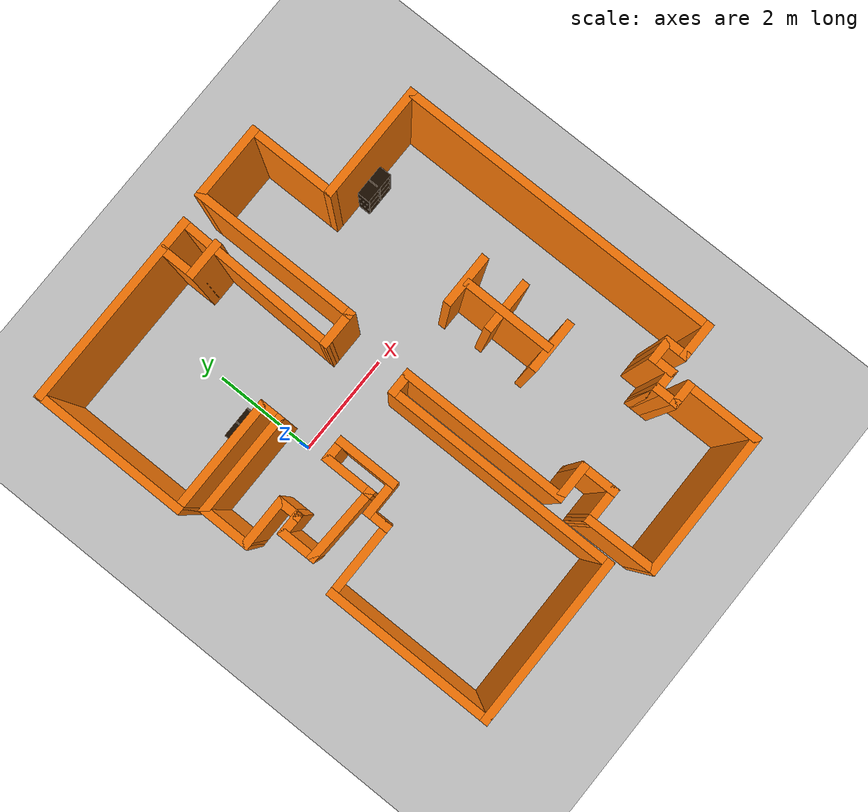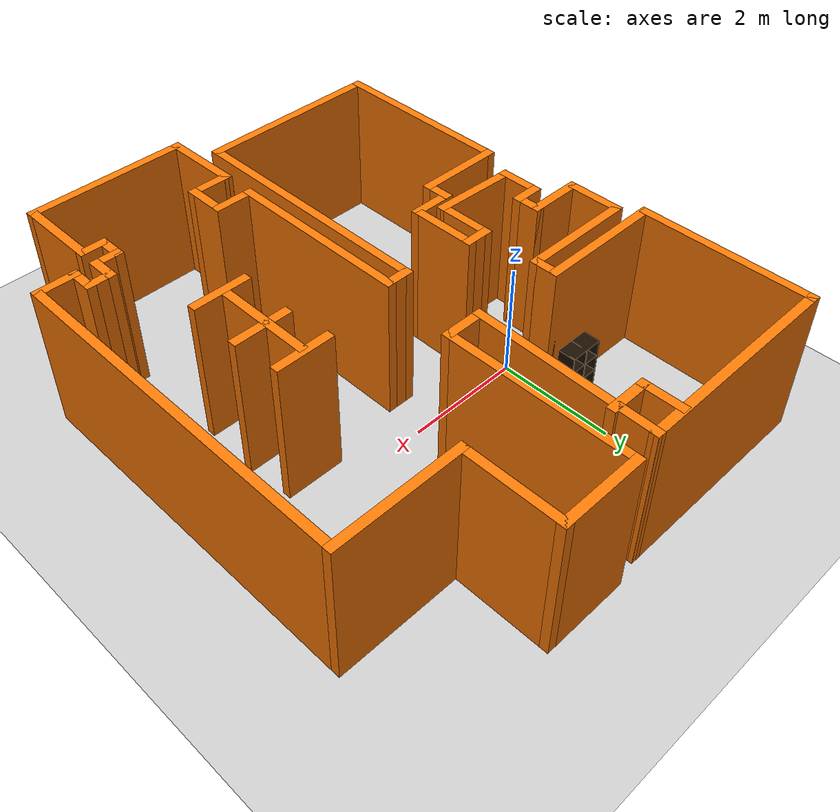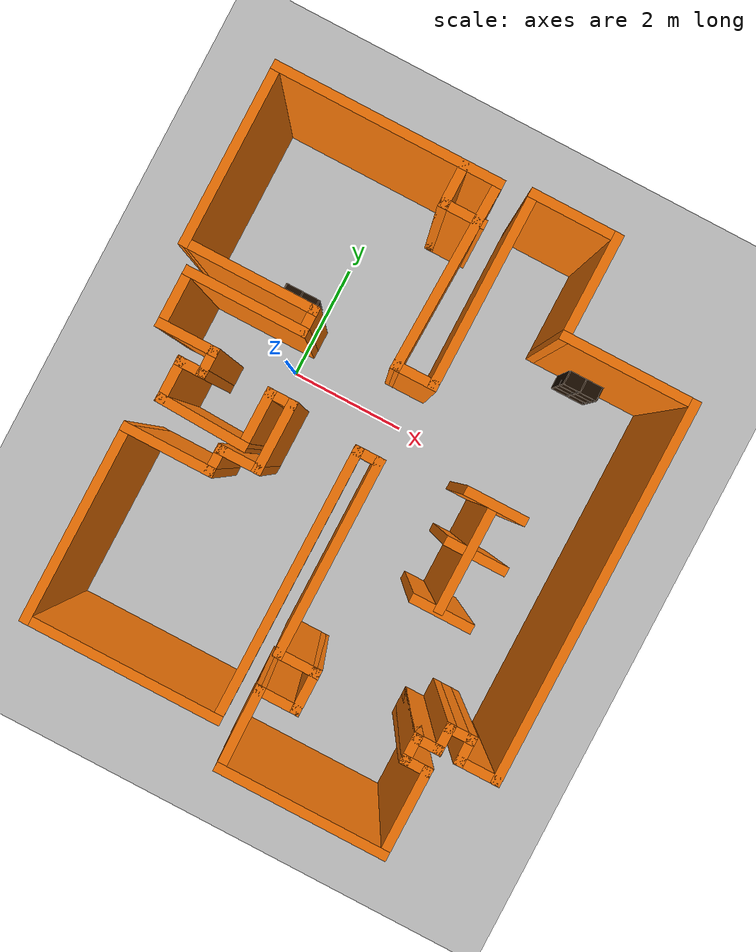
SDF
<sdf version="1.6">
 <world name="default">
  <light name="sun" type="directional">
   <pose>0 0 10 0 -0 0</pose>
   <diffuse>0.8 0.8 0.8 1</diffuse>
   <specular>0.2 0.2 0.2 1</specular>
   <attenuation>
    <range>1000</range>
    <constant>0.9</constant>
    <linear>0.01</linear>
    <quadratic>0.001</quadratic>
   </attenuation>
   <direction>-0.5 0.1 -0.9</direction>
  </light>
  <model name="ground_plane">
   <static>1</static>
   <link name="link">
    <collision name="collision">
     <geometry><plane><normal>0 0 1</normal><size>100 100</size></plane></geometry>
     <surface>
      <contact><collide_bitmask>65535</collide_bitmask></contact>
      <friction><ode><mu>100</mu><mu2>50</mu2></ode></friction>
     </surface>
    </collision>
    <visual name="visual">
     <cast_shadows>0</cast_shadows>
     <geometry><plane><normal>0 0 1</normal><size>100 100</size></plane></geometry>
     <material>
      <script><uri>file://media/materials/scripts/gazebo.material</uri><name>Gazebo/Grey</name></script>
     </material>
    </visual>
   </link>
  </model>
  <gravity>0 0 -9.8</gravity>
  <magnetic_field>6e-06 2.3e-05 -4.2e-05</magnetic_field>
  <atmosphere type="adiabatic"/>
  <physics name="default_physics" default="0" type="ode">
   <max_step_size>0.001</max_step_size>
   <real_time_factor>1</real_time_factor>
   <real_time_update_rate>1000</real_time_update_rate>
  </physics>
  <scene><ambient>0.4 0.4 0.4 1</ambient><background>0.7 0.7 0.7 1</background><shadows>1</shadows></scene>
  <audio><device>default</device></audio>
  <spherical_coordinates>
   <surface_model>EARTH_WGS84</surface_model>
   <latitude_deg>0</latitude_deg>
   <longitude_deg>0</longitude_deg>
   <elevation>0</elevation>
   <heading_deg>0</heading_deg>
  </spherical_coordinates>
  <model name="map_81">
   <pose>1.76322 -0.950902 0 0 -0 0</pose>
   <link name="Wall_0">
    <collision name="Wall_0_Collision">
     <geometry><box><size>3.75 0.15 2.5</size></box></geometry>
     <pose>0 0 1.25 0 -0 0</pose>
    </collision>
    <visual name="Wall_0_Visual">
     <pose>0 0 1.25 0 -0 0</pose>
     <geometry><box><size>3.75 0.15 2.5</size></box></geometry>
     <material>
      <script><uri>file://media/materials/scripts/gazebo.material</uri><name>Gazebo/Grey</name></script>
      <ambient>0.996078 0.47451 0.0196078 1</ambient>
     </material>
     <meta><layer>0</layer></meta>
    </visual>
    <pose>-1.98682 4.6059 0 0 -0 3.14159</pose>
   </link>
   <link name="Wall_1">
    <collision name="Wall_1_Collision">
     <geometry><box><size>3 0.15 2.5</size></box></geometry>
     <pose>0 0 1.25 0 -0 0</pose>
    </collision>
    <visual name="Wall_1_Visual">
     <pose>0 0 1.25 0 -0 0</pose>
     <geometry><box><size>3 0.15 2.5</size></box></geometry>
     <material>
      <script><uri>file://media/materials/scripts/gazebo.material</uri><name>Gazebo/Grey</name></script>
      <ambient>0.996078 0.47451 0.0196078 1</ambient>
     </material>
     <meta><layer>0</layer></meta>
    </visual>
    <pose>-3.78682 3.1809 0 0 -0 -1.5708</pose>
   </link>
   <link name="Wall_10">
    <collision name="Wall_10_Collision">
     <geometry><box><size>1 0.15 2.5</size></box></geometry>
     <pose>0 0 1.25 0 -0 0</pose>
    </collision>
    <visual name="Wall_10_Visual">
     <pose>0 0 1.25 0 -0 0</pose>
     <geometry><box><size>1 0.15 2.5</size></box></geometry>
     <material>
      <script><uri>file://media/materials/scripts/gazebo.material</uri><name>Gazebo/Grey</name></script>
      <ambient>0.996078 0.47451 0.0196078 1</ambient>
     </material>
     <meta><layer>0</layer></meta>
    </visual>
    <pose>-3.11182 0.555897 0 0 -0 0</pose>
   </link>
   <link name="Wall_11">
    <collision name="Wall_11_Collision">
     <geometry><box><size>0.5 0.15 2.5</size></box></geometry>
     <pose>0 0 1.25 0 -0 0</pose>
    </collision>
    <visual name="Wall_11_Visual">
     <pose>0 0 1.25 0 -0 0</pose>
     <geometry><box><size>0.5 0.15 2.5</size></box></geometry>
     <material>
      <script><uri>file://media/materials/scripts/gazebo.material</uri><name>Gazebo/Grey</name></script>
      <ambient>0.996078 0.47451 0.0196078 1</ambient>
     </material>
     <meta><layer>0</layer></meta>
    </visual>
    <pose>-2.68682 0.380897 0 0 -0 -1.5708</pose>
   </link>
   <link name="Wall_12">
    <collision name="Wall_12_Collision">
     <geometry><box><size>0.5 0.15 2.5</size></box></geometry>
     <pose>0 0 1.25 0 -0 0</pose>
    </collision>
    <visual name="Wall_12_Visual">
     <pose>0 0 1.25 0 -0 0</pose>
     <geometry><box><size>0.5 0.15 2.5</size></box></geometry>
     <material>
      <script><uri>file://media/materials/scripts/gazebo.material</uri><name>Gazebo/Grey</name></script>
      <ambient>0.996078 0.47451 0.0196078 1</ambient>
     </material>
     <meta><layer>0</layer></meta>
    </visual>
    <pose>-2.86182 0.205897 0 0 -0 3.14159</pose>
   </link>
   <link name="Wall_13">
    <collision name="Wall_13_Collision">
     <geometry><box><size>0.75 0.15 2.5</size></box></geometry>
     <pose>0 0 1.25 0 -0 0</pose>
    </collision>
    <visual name="Wall_13_Visual">
     <pose>0 0 1.25 0 -0 0</pose>
     <geometry><box><size>0.75 0.15 2.5</size></box></geometry>
     <material>
      <script><uri>file://media/materials/scripts/gazebo.material</uri><name>Gazebo/Grey</name></script>
      <ambient>0.996078 0.47451 0.0196078 1</ambient>
     </material>
     <meta><layer>0</layer></meta>
    </visual>
    <pose>-3.03682 -0.094103 0 0 -0 -1.5708</pose>
   </link>
   <link name="Wall_14">
    <collision name="Wall_14_Collision">
     <geometry><box><size>1.50105 0.15 2.5</size></box></geometry>
     <pose>0 0 1.25 0 -0 0</pose>
    </collision>
    <visual name="Wall_14_Visual">
     <pose>0 0 1.25 0 -0 0</pose>
     <geometry><box><size>1.50105 0.15 2.5</size></box></geometry>
     <material>
      <script><uri>file://media/materials/scripts/gazebo.material</uri><name>Gazebo/Grey</name></script>
      <ambient>0.996078 0.47451 0.0196078 1</ambient>
     </material>
     <meta><layer>0</layer></meta>
    </visual>
    <pose>-2.36182 -0.420703 0 0 -0 -0.039387</pose>
   </link>
   <link name="Wall_18">
    <collision name="Wall_18_Collision">
     <geometry><box><size>0.75 0.15 2.5</size></box></geometry>
     <pose>0 0 1.25 0 -0 0</pose>
    </collision>
    <visual name="Wall_18_Visual">
     <pose>0 0 1.25 0 -0 0</pose>
     <geometry><box><size>0.75 0.15 2.5</size></box></geometry>
     <material>
      <script><uri>file://media/materials/scripts/gazebo.material</uri><name>Gazebo/Grey</name></script>
      <ambient>0.996078 0.47451 0.0196078 1</ambient>
     </material>
     <meta><layer>0</layer></meta>
    </visual>
    <pose>-1.63682 -0.644103 0 0 -0 3.14159</pose>
   </link>
   <link name="Wall_19">
    <collision name="Wall_19_Collision">
     <geometry><box><size>0.5 0.15 2.5</size></box></geometry>
     <pose>0 0 1.25 0 -0 0</pose>
    </collision>
    <visual name="Wall_19_Visual">
     <pose>0 0 1.25 0 -0 0</pose>
     <geometry><box><size>0.5 0.15 2.5</size></box></geometry>
     <material>
      <script><uri>file://media/materials/scripts/gazebo.material</uri><name>Gazebo/Grey</name></script>
      <ambient>0.996078 0.47451 0.0196078 1</ambient>
     </material>
     <meta><layer>0</layer></meta>
    </visual>
    <pose>-1.93682 -0.819103 0 0 -0 -1.5708</pose>
   </link>
   <link name="Wall_2">
    <collision name="Wall_2_Collision">
     <geometry><box><size>2.25 0.15 2.5</size></box></geometry>
     <pose>0 0 1.25 0 -0 0</pose>
    </collision>
    <visual name="Wall_2_Visual">
     <pose>0 0 1.25 0 -0 0</pose>
     <geometry><box><size>2.25 0.15 2.5</size></box></geometry>
     <material>
      <script><uri>file://media/materials/scripts/gazebo.material</uri><name>Gazebo/Grey</name></script>
      <ambient>0.996078 0.47451 0.0196078 1</ambient>
     </material>
     <meta><layer>0</layer></meta>
    </visual>
    <pose>-2.73682 1.7559 0 0 -0 0</pose>
   </link>
   <link name="Wall_20">
    <collision name="Wall_20_Collision">
     <geometry><box><size>1.5 0.15 2.5</size></box></geometry>
     <pose>0 0 1.25 0 -0 0</pose>
    </collision>
    <visual name="Wall_20_Visual">
     <pose>0 0 1.25 0 -0 0</pose>
     <geometry><box><size>1.5 0.15 2.5</size></box></geometry>
     <material>
      <script><uri>file://media/materials/scripts/gazebo.material</uri><name>Gazebo/Grey</name></script>
      <ambient>0.996078 0.47451 0.0196078 1</ambient>
     </material>
     <meta><layer>0</layer></meta>
    </visual>
    <pose>-2.61182 -0.994103 0 0 -0 3.14159</pose>
   </link>
   <link name="Wall_21">
    <collision name="Wall_21_Collision">
     <geometry><box><size>3.25 0.15 2.5</size></box></geometry>
     <pose>0 0 1.25 0 -0 0</pose>
    </collision>
    <visual name="Wall_21_Visual">
     <pose>0 0 1.25 0 -0 0</pose>
     <geometry><box><size>3.25 0.15 2.5</size></box></geometry>
     <material>
      <script><uri>file://media/materials/scripts/gazebo.material</uri><name>Gazebo/Grey</name></script>
      <ambient>0.996078 0.47451 0.0196078 1</ambient>
     </material>
     <meta><layer>0</layer></meta>
    </visual>
    <pose>-3.28682 -2.5441 0 0 -0 -1.5708</pose>
   </link>
   <link name="Wall_22">
    <collision name="Wall_22_Collision">
     <geometry><box><size>3.25 0.15 2.5</size></box></geometry>
     <pose>0 0 1.25 0 -0 0</pose>
    </collision>
    <visual name="Wall_22_Visual">
     <pose>0 0 1.25 0 -0 0</pose>
     <geometry><box><size>3.25 0.15 2.5</size></box></geometry>
     <material>
      <script><uri>file://media/materials/scripts/gazebo.material</uri><name>Gazebo/Grey</name></script>
      <ambient>0.996078 0.47451 0.0196078 1</ambient>
     </material>
     <meta><layer>0</layer></meta>
    </visual>
    <pose>-1.73682 -4.0941 0 0 -0 0</pose>
   </link>
   <link name="Wall_23">
    <collision name="Wall_23_Collision">
     <geometry><box><size>4.5 0.15 2.5</size></box></geometry>
     <pose>0 0 1.25 0 -0 0</pose>
    </collision>
    <visual name="Wall_23_Visual">
     <pose>0 0 1.25 0 -0 0</pose>
     <geometry><box><size>4.5 0.15 2.5</size></box></geometry>
     <material>
      <script><uri>file://media/materials/scripts/gazebo.material</uri><name>Gazebo/Grey</name></script>
      <ambient>0.996078 0.47451 0.0196078 1</ambient>
     </material>
     <meta><layer>0</layer></meta>
    </visual>
    <pose>-0.186823 -1.9191 0 0 -0 1.5708</pose>
   </link>
   <link name="Wall_25">
    <collision name="Wall_25_Collision">
     <geometry><box><size>0.5 0.15 2.5</size></box></geometry>
     <pose>0 0 1.25 0 -0 0</pose>
    </collision>
    <visual name="Wall_25_Visual">
     <pose>0 0 1.25 0 -0 0</pose>
     <geometry><box><size>0.5 0.15 2.5</size></box></geometry>
     <material>
      <script><uri>file://media/materials/scripts/gazebo.material</uri><name>Gazebo/Grey</name></script>
      <ambient>0.996078 0.47451 0.0196078 1</ambient>
     </material>
     <meta><layer>0</layer></meta>
    </visual>
    <pose>-0.011823 0.255897 0 0 -0 0</pose>
   </link>
   <link name="Wall_26">
    <collision name="Wall_26_Collision">
     <geometry><box><size>3.25 0.15 2.5</size></box></geometry>
     <pose>0 0 1.25 0 -0 0</pose>
    </collision>
    <visual name="Wall_26_Visual">
     <pose>0 0 1.25 0 -0 0</pose>
     <geometry><box><size>3.25 0.15 2.5</size></box></geometry>
     <material>
      <script><uri>file://media/materials/scripts/gazebo.material</uri><name>Gazebo/Grey</name></script>
      <ambient>0.996078 0.47451 0.0196078 1</ambient>
     </material>
     <meta><layer>0</layer></meta>
    </visual>
    <pose>0.163177 -1.2941 0 0 -0 -1.5708</pose>
   </link>
   <link name="Wall_27">
    <collision name="Wall_27_Collision">
     <geometry><box><size>0.75 0.15 2.5</size></box></geometry>
     <pose>0 0 1.25 0 -0 0</pose>
    </collision>
    <visual name="Wall_27_Visual">
     <pose>0 0 1.25 0 -0 0</pose>
     <geometry><box><size>0.75 0.15 2.5</size></box></geometry>
     <material>
      <script><uri>file://media/materials/scripts/gazebo.material</uri><name>Gazebo/Grey</name></script>
      <ambient>0.996078 0.47451 0.0196078 1</ambient>
     </material>
     <meta><layer>0</layer></meta>
    </visual>
    <pose>0.463177 -2.8441 0 0 -0 0</pose>
   </link>
   <link name="Wall_28">
    <collision name="Wall_28_Collision">
     <geometry><box><size>0.75 0.15 2.5</size></box></geometry>
     <pose>0 0 1.25 0 -0 0</pose>
    </collision>
    <visual name="Wall_28_Visual">
     <pose>0 0 1.25 0 -0 0</pose>
     <geometry><box><size>0.75 0.15 2.5</size></box></geometry>
     <material>
      <script><uri>file://media/materials/scripts/gazebo.material</uri><name>Gazebo/Grey</name></script>
      <ambient>0.996078 0.47451 0.0196078 1</ambient>
     </material>
     <meta><layer>0</layer></meta>
    </visual>
    <pose>0.763177 -3.1441 0 0 -0 -1.5708</pose>
   </link>
   <link name="Wall_3">
    <collision name="Wall_3_Collision">
     <geometry><box><size>0.5 0.15 2.5</size></box></geometry>
     <pose>0 0 1.25 0 -0 0</pose>
    </collision>
    <visual name="Wall_3_Visual">
     <pose>0 0 1.25 0 -0 0</pose>
     <geometry><box><size>0.5 0.15 2.5</size></box></geometry>
     <material>
      <script><uri>file://media/materials/scripts/gazebo.material</uri><name>Gazebo/Grey</name></script>
      <ambient>0.996078 0.47451 0.0196078 1</ambient>
     </material>
     <meta><layer>0</layer></meta>
    </visual>
    <pose>-1.68682 1.5809 0 0 -0 -1.5708</pose>
   </link>
   <link name="Wall_33">
    <collision name="Wall_33_Collision">
     <geometry><box><size>2.80373 0.15 2.5</size></box></geometry>
     <pose>0 0 1.25 0 -0 0</pose>
    </collision>
    <visual name="Wall_33_Visual">
     <pose>0 0 1.25 0 -0 0</pose>
     <geometry><box><size>2.80373 0.15 2.5</size></box></geometry>
     <material>
      <script><uri>file://media/materials/scripts/gazebo.material</uri><name>Gazebo/Grey</name></script>
      <ambient>0.996078 0.47451 0.0196078 1</ambient>
     </material>
     <meta><layer>0</layer></meta>
    </visual>
    <pose>1.51022 -4.69939 0 0 -0 0</pose>
   </link>
   <link name="Wall_34">
    <collision name="Wall_34_Collision">
     <geometry><box><size>1.5 0.15 2.5</size></box></geometry>
     <pose>0 0 1.25 0 -0 0</pose>
    </collision>
    <visual name="Wall_34_Visual">
     <pose>0 0 1.25 0 -0 0</pose>
     <geometry><box><size>1.5 0.15 2.5</size></box></geometry>
     <material>
      <script><uri>file://media/materials/scripts/gazebo.material</uri><name>Gazebo/Grey</name></script>
      <ambient>0.996078 0.47451 0.0196078 1</ambient>
     </material>
     <meta><layer>0</layer></meta>
    </visual>
    <pose>2.83682 -4.0244 0 0 -0 1.5708</pose>
   </link>
   <link name="Wall_35">
    <collision name="Wall_35_Collision">
     <geometry><box><size>0.5 0.15 2.5</size></box></geometry>
     <pose>0 0 1.25 0 -0 0</pose>
    </collision>
    <visual name="Wall_35_Visual">
     <pose>0 0 1.25 0 -0 0</pose>
     <geometry><box><size>0.5 0.15 2.5</size></box></geometry>
     <material>
      <script><uri>file://media/materials/scripts/gazebo.material</uri><name>Gazebo/Grey</name></script>
      <ambient>0.996078 0.47451 0.0196078 1</ambient>
     </material>
     <meta><layer>0</layer></meta>
    </visual>
    <pose>2.66182 -3.34939 0 0 -0 3.14159</pose>
   </link>
   <link name="Wall_36">
    <collision name="Wall_36_Collision">
     <geometry><box><size>0.5 0.15 2.5</size></box></geometry>
     <pose>0 0 1.25 0 -0 0</pose>
    </collision>
    <visual name="Wall_36_Visual">
     <pose>0 0 1.25 0 -0 0</pose>
     <geometry><box><size>0.5 0.15 2.5</size></box></geometry>
     <material>
      <script><uri>file://media/materials/scripts/gazebo.material</uri><name>Gazebo/Grey</name></script>
      <ambient>0.996078 0.47451 0.0196078 1</ambient>
     </material>
     <meta><layer>0</layer></meta>
    </visual>
    <pose>2.48682 -3.17439 0 0 -0 1.5708</pose>
   </link>
   <link name="Wall_37">
    <collision name="Wall_37_Collision">
     <geometry><box><size>0.5 0.15 2.5</size></box></geometry>
     <pose>0 0 1.25 0 -0 0</pose>
    </collision>
    <visual name="Wall_37_Visual">
     <pose>0 0 1.25 0 -0 0</pose>
     <geometry><box><size>0.5 0.15 2.5</size></box></geometry>
     <material>
      <script><uri>file://media/materials/scripts/gazebo.material</uri><name>Gazebo/Grey</name></script>
      <ambient>0.996078 0.47451 0.0196078 1</ambient>
     </material>
     <meta><layer>0</layer></meta>
    </visual>
    <pose>2.66182 -2.99939 0 0 -0 0</pose>
   </link>
   <link name="Wall_38">
    <collision name="Wall_38_Collision">
     <geometry><box><size>0.5 0.15 2.5</size></box></geometry>
     <pose>0 0 1.25 0 -0 0</pose>
    </collision>
    <visual name="Wall_38_Visual">
     <pose>0 0 1.25 0 -0 0</pose>
     <geometry><box><size>0.5 0.15 2.5</size></box></geometry>
     <material>
      <script><uri>file://media/materials/scripts/gazebo.material</uri><name>Gazebo/Grey</name></script>
      <ambient>0.996078 0.47451 0.0196078 1</ambient>
     </material>
     <meta><layer>0</layer></meta>
    </visual>
    <pose>2.83682 -2.82439 0 0 -0 1.5708</pose>
   </link>
   <link name="Wall_39">
    <collision name="Wall_39_Collision">
     <geometry><box><size>0.5 0.15 2.5</size></box></geometry>
     <pose>0 0 1.25 0 -0 0</pose>
    </collision>
    <visual name="Wall_39_Visual">
     <pose>0 0 1.25 0 -0 0</pose>
     <geometry><box><size>0.5 0.15 2.5</size></box></geometry>
     <material>
      <script><uri>file://media/materials/scripts/gazebo.material</uri><name>Gazebo/Grey</name></script>
      <ambient>0.996078 0.47451 0.0196078 1</ambient>
     </material>
     <meta><layer>0</layer></meta>
    </visual>
    <pose>3.01182 -2.6494 0 0 -0 0</pose>
   </link>
   <link name="Wall_40">
    <collision name="Wall_40_Collision">
     <geometry><box><size>0.5 0.15 2.5</size></box></geometry>
     <pose>0 0 1.25 0 -0 0</pose>
    </collision>
    <visual name="Wall_40_Visual">
     <pose>0 0 1.25 0 -0 0</pose>
     <geometry><box><size>0.5 0.15 2.5</size></box></geometry>
     <material>
      <script><uri>file://media/materials/scripts/gazebo.material</uri><name>Gazebo/Grey</name></script>
      <ambient>0.996078 0.47451 0.0196078 1</ambient>
     </material>
     <meta><layer>0</layer></meta>
    </visual>
    <pose>3.18682 -2.82439 0 0 -0 -1.5708</pose>
   </link>
   <link name="Wall_41">
    <collision name="Wall_41_Collision">
     <geometry><box><size>0.75 0.15 2.5</size></box></geometry>
     <pose>0 0 1.25 0 -0 0</pose>
    </collision>
    <visual name="Wall_41_Visual">
     <pose>0 0 1.25 0 -0 0</pose>
     <geometry><box><size>0.75 0.15 2.5</size></box></geometry>
     <material>
      <script><uri>file://media/materials/scripts/gazebo.material</uri><name>Gazebo/Grey</name></script>
      <ambient>0.996078 0.47451 0.0196078 1</ambient>
     </material>
     <meta><layer>0</layer></meta>
    </visual>
    <pose>3.48682 -2.99939 0 0 -0 0</pose>
   </link>
   <link name="Wall_42">
    <collision name="Wall_42_Collision">
     <geometry><box><size>6.25 0.15 2.5</size></box></geometry>
     <pose>0 0 1.25 0 -0 0</pose>
    </collision>
    <visual name="Wall_42_Visual">
     <pose>0 0 1.25 0 -0 0</pose>
     <geometry><box><size>6.25 0.15 2.5</size></box></geometry>
     <material>
      <script><uri>file://media/materials/scripts/gazebo.material</uri><name>Gazebo/Grey</name></script>
      <ambient>0.996078 0.47451 0.0196078 1</ambient>
     </material>
     <meta><layer>0</layer></meta>
    </visual>
    <pose>3.78682 0.050606 0 0 -0 1.5708</pose>
   </link>
   <link name="Wall_43">
    <collision name="Wall_43_Collision">
     <geometry><box><size>2.25 0.15 2.5</size></box></geometry>
     <pose>0 0 1.25 0 -0 0</pose>
    </collision>
    <visual name="Wall_43_Visual">
     <pose>0 0 1.25 0 -0 0</pose>
     <geometry><box><size>2.25 0.15 2.5</size></box></geometry>
     <material>
      <script><uri>file://media/materials/scripts/gazebo.material</uri><name>Gazebo/Grey</name></script>
      <ambient>0.996078 0.47451 0.0196078 1</ambient>
     </material>
     <meta><layer>0</layer></meta>
    </visual>
    <pose>2.73682 3.10061 0 0 -0 3.14159</pose>
   </link>
   <link name="Wall_44">
    <collision name="Wall_44_Collision">
     <geometry><box><size>1.75 0.15 2.5</size></box></geometry>
     <pose>0 0 1.25 0 -0 0</pose>
    </collision>
    <visual name="Wall_44_Visual">
     <pose>0 0 1.25 0 -0 0</pose>
     <geometry><box><size>1.75 0.15 2.5</size></box></geometry>
     <material>
      <script><uri>file://media/materials/scripts/gazebo.material</uri><name>Gazebo/Grey</name></script>
      <ambient>0.996078 0.47451 0.0196078 1</ambient>
     </material>
     <meta><layer>0</layer></meta>
    </visual>
    <pose>1.68682 3.90061 0 0 -0 1.5708</pose>
   </link>
   <link name="Wall_45">
    <collision name="Wall_45_Collision">
     <geometry><box><size>1.5 0.15 2.5</size></box></geometry>
     <pose>0 0 1.25 0 -0 0</pose>
    </collision>
    <visual name="Wall_45_Visual">
     <pose>0 0 1.25 0 -0 0</pose>
     <geometry><box><size>1.5 0.15 2.5</size></box></geometry>
     <material>
      <script><uri>file://media/materials/scripts/gazebo.material</uri><name>Gazebo/Grey</name></script>
      <ambient>0.996078 0.47451 0.0196078 1</ambient>
     </material>
     <meta><layer>0</layer></meta>
    </visual>
    <pose>1.01182 4.70061 0 0 -0 3.14159</pose>
   </link>
   <link name="Wall_46">
    <collision name="Wall_46_Collision">
     <geometry><box><size>3.25 0.15 2.5</size></box></geometry>
     <pose>0 0 1.25 0 -0 0</pose>
    </collision>
    <visual name="Wall_46_Visual">
     <pose>0 0 1.25 0 -0 0</pose>
     <geometry><box><size>3.25 0.15 2.5</size></box></geometry>
     <material>
      <script><uri>file://media/materials/scripts/gazebo.material</uri><name>Gazebo/Grey</name></script>
      <ambient>0.996078 0.47451 0.0196078 1</ambient>
     </material>
     <meta><layer>0</layer></meta>
    </visual>
    <pose>0.336822 3.15061 0 0 -0 -1.5708</pose>
   </link>
   <link name="Wall_49">
    <collision name="Wall_49_Collision">
     <geometry><box><size>0.75 0.15 2.5</size></box></geometry>
     <pose>0 0 1.25 0 -0 0</pose>
    </collision>
    <visual name="Wall_49_Visual">
     <pose>0 0 1.25 0 -0 0</pose>
     <geometry><box><size>0.75 0.15 2.5</size></box></geometry>
     <material>
      <script><uri>file://media/materials/scripts/gazebo.material</uri><name>Gazebo/Grey</name></script>
      <ambient>0.996078 0.47451 0.0196078 1</ambient>
     </material>
     <meta><layer>0</layer></meta>
    </visual>
    <pose>0.036822 1.60061 0 0 -0 3.14159</pose>
   </link>
   <link name="Wall_50">
    <collision name="Wall_50_Collision">
     <geometry><box><size>3.15626 0.15 2.5</size></box></geometry>
     <pose>0 0 1.25 0 -0 0</pose>
    </collision>
    <visual name="Wall_50_Visual">
     <pose>0 0 1.25 0 -0 0</pose>
     <geometry><box><size>3.15626 0.15 2.5</size></box></geometry>
     <material>
      <script><uri>file://media/materials/scripts/gazebo.material</uri><name>Gazebo/Grey</name></script>
      <ambient>0.996078 0.47451 0.0196078 1</ambient>
     </material>
     <meta><layer>0</layer></meta>
    </visual>
    <pose>-0.225 3.10325 0 0 -0 1.5454</pose>
   </link>
   <link name="Wall_52">
    <collision name="Wall_52_Collision">
     <geometry><box><size>0.75 0.15 2.5</size></box></geometry>
     <pose>0 0 1.25 0 -0 0</pose>
    </collision>
    <visual name="Wall_52_Visual">
     <pose>0 0 1.25 0 -0 0</pose>
     <geometry><box><size>0.75 0.15 2.5</size></box></geometry>
     <material>
      <script><uri>file://media/materials/scripts/gazebo.material</uri><name>Gazebo/Grey</name></script>
      <ambient>0.996078 0.47451 0.0196078 1</ambient>
     </material>
     <meta><layer>0</layer></meta>
    </visual>
    <pose>-0.745427 4.2793 0 0 -0 -1.5708</pose>
   </link>
   <link name="Wall_55">
    <collision name="Wall_55_Collision">
     <geometry><box><size>0.75 0.15 2.5</size></box></geometry>
     <pose>0 0 1.25 0 -0 0</pose>
    </collision>
    <visual name="Wall_55_Visual">
     <pose>0 0 1.25 0 -0 0</pose>
     <geometry><box><size>0.75 0.15 2.5</size></box></geometry>
     <material>
      <script><uri>file://media/materials/scripts/gazebo.material</uri><name>Gazebo/Grey</name></script>
      <ambient>0.996078 0.47451 0.0196078 1</ambient>
     </material>
     <meta><layer>0</layer></meta>
    </visual>
    <pose>-0.445427 3.9793 0 0 -0 0</pose>
   </link>
   <link name="Wall_57">
    <collision name="Wall_57_Collision">
     <geometry><box><size>1 0.15 2.5</size></box></geometry>
     <pose>0 0 1.25 0 -0 0</pose>
    </collision>
    <visual name="Wall_57_Visual">
     <pose>0 0 1.25 0 -0 0</pose>
     <geometry><box><size>1 0.15 2.5</size></box></geometry>
     <material>
      <script><uri>file://media/materials/scripts/gazebo.material</uri><name>Gazebo/Grey</name></script>
      <ambient>0.996078 0.47451 0.0196078 1</ambient>
     </material>
     <meta><layer>0</layer></meta>
    </visual>
    <pose>-1.68682 -0.022303 0 0 -0 1.5708</pose>
   </link>
   <link name="Wall_58">
    <collision name="Wall_58_Collision">
     <geometry><box><size>0.5 0.15 2.5</size></box></geometry>
     <pose>0 0 1.25 0 -0 0</pose>
    </collision>
    <visual name="Wall_58_Visual">
     <pose>0 0 1.25 0 -0 0</pose>
     <geometry><box><size>0.5 0.15 2.5</size></box></geometry>
     <material>
      <script><uri>file://media/materials/scripts/gazebo.material</uri><name>Gazebo/Grey</name></script>
      <ambient>0.996078 0.47451 0.0196078 1</ambient>
     </material>
     <meta><layer>0</layer></meta>
    </visual>
    <pose>-1.51182 0.402696 0 0 -0 0</pose>
   </link>
   <link name="Wall_59">
    <collision name="Wall_59_Collision">
     <geometry><box><size>1.1968 0.15 2.5</size></box></geometry>
     <pose>0 0 1.25 0 -0 0</pose>
    </collision>
    <visual name="Wall_59_Visual">
     <pose>0 0 1.25 0 -0 0</pose>
     <geometry><box><size>1.1968 0.15 2.5</size></box></geometry>
     <material>
      <script><uri>file://media/materials/scripts/gazebo.material</uri><name>Gazebo/Grey</name></script>
      <ambient>0.996078 0.47451 0.0196078 1</ambient>
     </material>
     <meta><layer>0</layer></meta>
    </visual>
    <pose>-1.33682 -0.120703 0 0 -0 -1.5708</pose>
   </link>
   <link name="Wall_8">
    <collision name="Wall_8_Collision">
     <geometry><box><size>2 0.15 2.5</size></box></geometry>
     <pose>0 0 1.25 0 -0 0</pose>
    </collision>
    <visual name="Wall_8_Visual">
     <pose>0 0 1.25 0 -0 0</pose>
     <geometry><box><size>2 0.15 2.5</size></box></geometry>
     <material>
      <script><uri>file://media/materials/scripts/gazebo.material</uri><name>Gazebo/Grey</name></script>
      <ambient>0.996078 0.47451 0.0196078 1</ambient>
     </material>
     <meta><layer>0</layer></meta>
    </visual>
    <pose>-2.61182 1.4059 0 0 -0 3.14159</pose>
   </link>
   <link name="Wall_80">
    <collision name="Wall_80_Collision">
     <geometry><box><size>0.75 0.15 2.5</size></box></geometry>
     <pose>0 0 1.25 0 -0 0</pose>
    </collision>
    <visual name="Wall_80_Visual">
     <pose>0 0 1.25 0 -0 0</pose>
     <geometry><box><size>0.75 0.15 2.5</size></box></geometry>
     <material>
      <script><uri>file://media/materials/scripts/gazebo.material</uri><name>Gazebo/Grey</name></script>
      <ambient>0.996078 0.47451 0.0196078 1</ambient>
     </material>
     <meta><layer>0</layer></meta>
    </visual>
    <pose>0.463177 -3.4441 0 0 -0 3.14159</pose>
   </link>
   <link name="Wall_81">
    <collision name="Wall_81_Collision">
     <geometry><box><size>1.40546 0.15 2.5</size></box></geometry>
     <pose>0 0 1.25 0 -0 0</pose>
    </collision>
    <visual name="Wall_81_Visual">
     <pose>0 0 1.25 0 -0 0</pose>
     <geometry><box><size>1.40546 0.15 2.5</size></box></geometry>
     <material>
      <script><uri>file://media/materials/scripts/gazebo.material</uri><name>Gazebo/Grey</name></script>
      <ambient>0.996078 0.47451 0.0196078 1</ambient>
     </material>
     <meta><layer>0</layer></meta>
    </visual>
    <pose>0.1734 -4.07175 0 0 -0 -1.55451</pose>
   </link>
   <link name="Wall_9">
    <collision name="Wall_9_Collision">
     <geometry><box><size>1 0.15 2.5</size></box></geometry>
     <pose>0 0 1.25 0 -0 0</pose>
    </collision>
    <visual name="Wall_9_Visual">
     <pose>0 0 1.25 0 -0 0</pose>
     <geometry><box><size>1 0.15 2.5</size></box></geometry>
     <material>
      <script><uri>file://media/materials/scripts/gazebo.material</uri><name>Gazebo/Grey</name></script>
      <ambient>0.996078 0.47451 0.0196078 1</ambient>
     </material>
     <meta><layer>0</layer></meta>
    </visual>
    <pose>-3.53682 0.980897 0 0 -0 -1.5708</pose>
   </link>
   <link name="Wall_93">
    <collision name="Wall_93_Collision">
     <geometry><box><size>1 0.15 2.5</size></box></geometry>
     <pose>0 0 1.25 0 -0 0</pose>
    </collision>
    <visual name="Wall_93_Visual">
     <pose>0 0 1.25 0 -0 0</pose>
     <geometry><box><size>1 0.15 2.5</size></box></geometry>
     <material>
      <script><uri>file://media/materials/scripts/gazebo.material</uri><name>Gazebo/Grey</name></script>
      <ambient>0.996078 0.47451 0.0196078 1</ambient>
     </material>
     <meta><layer>0</layer></meta>
    </visual>
    <pose>1.94059 0.482866 0 0 -0 0</pose>
   </link>
   <link name="Wall_95">
    <collision name="Wall_95_Collision">
     <geometry><box><size>1.75 0.15 2.5</size></box></geometry>
     <pose>0 0 1.25 0 -0 0</pose>
    </collision>
    <visual name="Wall_95_Visual">
     <pose>0 0 1.25 0 -0 0</pose>
     <geometry><box><size>1.75 0.15 2.5</size></box></geometry>
     <material>
      <script><uri>file://media/materials/scripts/gazebo.material</uri><name>Gazebo/Grey</name></script>
      <ambient>0.996078 0.47451 0.0196078 1</ambient>
     </material>
     <meta><layer>0</layer></meta>
    </visual>
    <pose>1.91459 -0.396934 0 0 -0 -1.5708</pose>
   </link>
   <link name="Wall_97">
    <collision name="Wall_97_Collision">
     <geometry><box><size>1 0.15 2.5</size></box></geometry>
     <pose>0 0 1.25 0 -0 0</pose>
    </collision>
    <visual name="Wall_97_Visual">
     <pose>0 0 1.25 0 -0 0</pose>
     <geometry><box><size>1 0.15 2.5</size></box></geometry>
     <material>
      <script><uri>file://media/materials/scripts/gazebo.material</uri><name>Gazebo/Grey</name></script>
      <ambient>0.996078 0.47451 0.0196078 1</ambient>
     </material>
     <meta><layer>0</layer></meta>
    </visual>
    <pose>2.02039 -0.28854 0 0 -0 0</pose>
   </link>
   <link name="Wall_99">
    <collision name="Wall_99_Collision">
     <geometry><box><size>1 0.15 2.5</size></box></geometry>
     <pose>0 0 1.25 0 -0 0</pose>
    </collision>
    <visual name="Wall_99_Visual">
     <pose>0 0 1.25 0 -0 0</pose>
     <geometry><box><size>1 0.15 2.5</size></box></geometry>
     <material>
      <script><uri>file://media/materials/scripts/gazebo.material</uri><name>Gazebo/Grey</name></script>
      <ambient>0.996078 0.47451 0.0196078 1</ambient>
     </material>
     <meta><layer>0</layer></meta>
    </visual>
    <pose>1.96719 -1.24615 0 0 -0 0</pose>
   </link>
   <static>1</static>
  </model>
  <model name="6_Cube_StorageE">
   <link name="Wall_0">
    <pose>0 0 0.01 0 -0 0</pose>
    <inertial>
     <mass>1.6201</mass>
     <inertia><ixx>0.0119</ixx><iyy>0.0631</iyy><izz>0.0513</izz><ixy>0</ixy><ixz>0</ixz><iyz>0</iyz></inertia>
    </inertial>
    <collision name="Wall_0_Collision"><geometry><box><size>0.616 0.296 0.02</size></box></geometry></collision>
    <visual name="Wall_0_Visual">
     <geometry><box><size>0.616 0.296 0.02</size></box></geometry>
     <material>
      <script><uri>file://media/materials/scripts/gazebo.material</uri><name>Gazebo/Grey</name></script>
      <ambient>0.105882 0.0509804 0 1</ambient>
     </material>
    </visual>
   </link>
   <joint name="0_2" type="fixed">
    <pose>-0.308 0 0 0 -0 0</pose>
    <parent>Wall_2</parent>
    <child>Wall_0</child>
    <axis>
     <xyz>1 0 0</xyz>
     <use_parent_model_frame>0</use_parent_model_frame>
     <limit><lower>-1e+16</lower><upper>1e+16</upper></limit>
    </axis>
   </joint>
   <joint name="0_12" type="fixed">
    <parent>Wall_12</parent>
    <child>Wall_0</child>
    <axis>
     <xyz>0 0 1</xyz>
     <use_parent_model_frame>0</use_parent_model_frame>
     <limit><lower>-1e+16</lower><upper>1e+16</upper></limit>
    </axis>
   </joint>
   <joint name="0_4" type="fixed">
    <pose>0.308 0 0 0 -0 0</pose>
    <parent>Wall_4</parent>
    <child>Wall_0</child>
    <axis>
     <xyz>1 0 0</xyz>
     <use_parent_model_frame>0</use_parent_model_frame>
     <limit><lower>-1e+16</lower><upper>1e+16</upper></limit>
    </axis>
   </joint>
   <link name="Wall_10">
    <pose>0 0 0.61 0 -0 0</pose>
    <inertial>
     <mass>1.6201</mass>
     <inertia><ixx>0.0119</ixx><iyy>0.0631</iyy><izz>0.0513</izz><ixy>0</ixy><ixz>0</ixz><iyz>0</iyz></inertia>
    </inertial>
    <collision name="Wall_10_Collision"><geometry><box><size>0.616 0.296 0.02</size></box></geometry></collision>
    <visual name="Wall_10_Visual">
     <geometry><box><size>0.616 0.296 0.02</size></box></geometry>
     <material>
      <script><uri>file://media/materials/scripts/gazebo.material</uri><name>Gazebo/Grey</name></script>
      <ambient>0.105882 0.0509804 0 1</ambient>
     </material>
    </visual>
   </link>
   <joint name="10_2" type="fixed">
    <pose>-0.308 0 0 0 -0 0</pose>
    <parent>Wall_2</parent>
    <child>Wall_10</child>
    <axis>
     <xyz>1 0 0</xyz>
     <use_parent_model_frame>0</use_parent_model_frame>
     <limit><lower>-1e+16</lower><upper>1e+16</upper></limit>
    </axis>
   </joint>
   <joint name="10_12" type="fixed">
    <parent>Wall_12</parent>
    <child>Wall_10</child>
    <axis>
     <xyz>0 0 1</xyz>
     <use_parent_model_frame>0</use_parent_model_frame>
     <limit><lower>-1e+16</lower><upper>1e+16</upper></limit>
    </axis>
   </joint>
   <joint name="10_4" type="fixed">
    <pose>0.308 0 0 0 -0 0</pose>
    <parent>Wall_4</parent>
    <child>Wall_10</child>
    <axis>
     <xyz>1 0 0</xyz>
     <use_parent_model_frame>0</use_parent_model_frame>
     <limit><lower>-1e+16</lower><upper>1e+16</upper></limit>
    </axis>
   </joint>
   <link name="Wall_12">
    <pose>0 0 0.4575 0 -0 0</pose>
    <inertial>
     <mass>2.4065</mass>
     <inertia><ixx>0.0177</ixx><iyy>0.1855</iyy><izz>0.168</izz><ixy>0</ixy><ixz>0</ixz><iyz>0</iyz></inertia>
    </inertial>
    <collision name="Wall_12_Collision"><geometry><box><size>0.02 0.296 0.915</size></box></geometry></collision>
    <visual name="Wall_12_Visual">
     <geometry><box><size>0.02 0.296 0.915</size></box></geometry>
     <material>
      <script><uri>file://media/materials/scripts/gazebo.material</uri><name>Gazebo/Grey</name></script>
      <ambient>0.105882 0.0509804 0 1</ambient>
     </material>
    </visual>
   </link>
   <link name="Wall_2">
    <pose>-0.298 0 0.4575 0 -0 0</pose>
    <inertial>
     <mass>2.4065</mass>
     <inertia><ixx>0.0177</ixx><iyy>0.1855</iyy><izz>0.168</izz><ixy>0</ixy><ixz>0</ixz><iyz>0</iyz></inertia>
    </inertial>
    <collision name="Wall_2_Collision"><geometry><box><size>0.02 0.296 0.915</size></box></geometry></collision>
    <visual name="Wall_2_Visual">
     <geometry><box><size>0.02 0.296 0.915</size></box></geometry>
     <material>
      <script><uri>file://media/materials/scripts/gazebo.material</uri><name>Gazebo/Grey</name></script>
      <ambient>0.105882 0.0509804 0 1</ambient>
     </material>
    </visual>
   </link>
   <link name="Wall_4">
    <pose>0.298 0 0.4575 0 -0 0</pose>
    <inertial>
     <mass>2.4065</mass>
     <inertia><ixx>0.0177</ixx><iyy>0.1855</iyy><izz>0.168</izz><ixy>0</ixy><ixz>0</ixz><iyz>0</iyz></inertia>
    </inertial>
    <collision name="Wall_4_Collision"><geometry><box><size>0.02 0.296 0.915</size></box></geometry></collision>
    <visual name="Wall_4_Visual">
     <geometry><box><size>0.02 0.296 0.915</size></box></geometry>
     <material>
      <script><uri>file://media/materials/scripts/gazebo.material</uri><name>Gazebo/Grey</name></script>
      <ambient>0.105882 0.0509804 0 1</ambient>
     </material>
    </visual>
   </link>
   <link name="Wall_6">
    <pose>0 0 0.905 0 -0 0</pose>
    <inertial>
     <mass>1.6201</mass>
     <inertia><ixx>0.0119</ixx><iyy>0.0631</iyy><izz>0.0513</izz><ixy>0</ixy><ixz>0</ixz><iyz>0</iyz></inertia>
    </inertial>
    <collision name="Wall_6_Collision"><geometry><box><size>0.616 0.296 0.02</size></box></geometry></collision>
    <visual name="Wall_6_Visual">
     <geometry><box><size>0.616 0.296 0.02</size></box></geometry>
     <material>
      <script><uri>file://media/materials/scripts/gazebo.material</uri><name>Gazebo/Grey</name></script>
      <ambient>0.105882 0.0509804 0 1</ambient>
     </material>
    </visual>
   </link>
   <joint name="6_2" type="fixed">
    <pose>-0.308 0 0 0 -0 0</pose>
    <parent>Wall_2</parent>
    <child>Wall_6</child>
    <axis>
     <xyz>2 0 0</xyz>
     <use_parent_model_frame>0</use_parent_model_frame>
     <limit><lower>-1e+16</lower><upper>1e+16</upper></limit>
    </axis>
   </joint>
   <joint name="6_12" type="fixed">
    <parent>Wall_12</parent>
    <child>Wall_6</child>
    <axis>
     <xyz>0 0 1</xyz>
     <use_parent_model_frame>0</use_parent_model_frame>
     <limit><lower>-1e+16</lower><upper>1e+16</upper></limit>
    </axis>
   </joint>
   <joint name="6_4" type="fixed">
    <pose>0.308 0 0 0 -0 0</pose>
    <parent>Wall_4</parent>
    <child>Wall_6</child>
    <axis>
     <xyz>1 0 0</xyz>
     <use_parent_model_frame>0</use_parent_model_frame>
     <limit><lower>-1e+16</lower><upper>1e+16</upper></limit>
    </axis>
   </joint>
   <link name="Wall_8">
    <pose>0 0 0.305 0 -0 0</pose>
    <inertial>
     <mass>1.6201</mass>
     <inertia><ixx>0.0119</ixx><iyy>0.0631</iyy><izz>0.0513</izz><ixy>0</ixy><ixz>0</ixz><iyz>0</iyz></inertia>
    </inertial>
    <collision name="Wall_8_Collision"><geometry><box><size>0.616 0.296 0.02</size></box></geometry></collision>
    <visual name="Wall_8_Visual">
     <geometry><box><size>0.616 0.296 0.02</size></box></geometry>
     <material>
      <script><uri>file://media/materials/scripts/gazebo.material</uri><name>Gazebo/Grey</name></script>
      <ambient>0.105882 0.0509804 0 1</ambient>
     </material>
    </visual>
   </link>
   <joint name="8_2" type="fixed">
    <pose>-0.308 0 0 0 -0 0</pose>
    <parent>Wall_2</parent>
    <child>Wall_8</child>
    <axis>
     <xyz>1 0 0</xyz>
     <use_parent_model_frame>0</use_parent_model_frame>
     <limit><lower>-1e+16</lower><upper>1e+16</upper></limit>
    </axis>
   </joint>
   <joint name="8_12" type="fixed">
    <parent>Wall_12</parent>
    <child>Wall_8</child>
    <axis>
     <xyz>0 0 1</xyz>
     <use_parent_model_frame>0</use_parent_model_frame>
     <limit><lower>-1e+16</lower><upper>1e+16</upper></limit>
    </axis>
   </joint>
   <joint name="8_4" type="fixed">
    <pose>0.308 0 0 0 -0 0</pose>
    <parent>Wall_4</parent>
    <child>Wall_8</child>
    <axis>
     <xyz>1 0 0</xyz>
     <use_parent_model_frame>0</use_parent_model_frame>
     <limit><lower>-1e+16</lower><upper>1e+16</upper></limit>
    </axis>
   </joint>
   <static>1</static>
   <pose>-0.41764 1.04055 0 0 -0 0</pose>
  </model>
  <model name="6_Cube_StorageE_0">
   <link name="Wall_0">
    <pose>0 0 0.01 0 -0 0</pose>
    <inertial>
     <mass>1.6201</mass>
     <inertia><ixx>0.0119</ixx><iyy>0.0631</iyy><izz>0.0513</izz><ixy>0</ixy><ixz>0</ixz><iyz>0</iyz></inertia>
    </inertial>
    <collision name="Wall_0_Collision"><geometry><box><size>0.616 0.296 0.02</size></box></geometry></collision>
    <visual name="Wall_0_Visual">
     <geometry><box><size>0.616 0.296 0.02</size></box></geometry>
     <material>
      <script><uri>file://media/materials/scripts/gazebo.material</uri><name>Gazebo/Grey</name></script>
      <ambient>0.105882 0.0509804 0 1</ambient>
     </material>
    </visual>
   </link>
   <joint name="0_2" type="fixed">
    <pose>-0.308 0 0 0 -0 0</pose>
    <parent>Wall_2</parent>
    <child>Wall_0</child>
    <axis>
     <xyz>1 0 0</xyz>
     <use_parent_model_frame>0</use_parent_model_frame>
     <limit><lower>-1e+16</lower><upper>1e+16</upper></limit>
    </axis>
   </joint>
   <joint name="0_12" type="fixed">
    <parent>Wall_12</parent>
    <child>Wall_0</child>
    <axis>
     <xyz>0 0 1</xyz>
     <use_parent_model_frame>0</use_parent_model_frame>
     <limit><lower>-1e+16</lower><upper>1e+16</upper></limit>
    </axis>
   </joint>
   <joint name="0_4" type="fixed">
    <pose>0.308 0 0 0 -0 0</pose>
    <parent>Wall_4</parent>
    <child>Wall_0</child>
    <axis>
     <xyz>1 0 0</xyz>
     <use_parent_model_frame>0</use_parent_model_frame>
     <limit><lower>-1e+16</lower><upper>1e+16</upper></limit>
    </axis>
   </joint>
   <link name="Wall_10">
    <pose>0 0 0.61 0 -0 0</pose>
    <inertial>
     <mass>1.6201</mass>
     <inertia><ixx>0.0119</ixx><iyy>0.0631</iyy><izz>0.0513</izz><ixy>0</ixy><ixz>0</ixz><iyz>0</iyz></inertia>
    </inertial>
    <collision name="Wall_10_Collision"><geometry><box><size>0.616 0.296 0.02</size></box></geometry></collision>
    <visual name="Wall_10_Visual">
     <geometry><box><size>0.616 0.296 0.02</size></box></geometry>
     <material>
      <script><uri>file://media/materials/scripts/gazebo.material</uri><name>Gazebo/Grey</name></script>
      <ambient>0.105882 0.0509804 0 1</ambient>
     </material>
    </visual>
   </link>
   <joint name="10_2" type="fixed">
    <pose>-0.308 0 0 0 -0 0</pose>
    <parent>Wall_2</parent>
    <child>Wall_10</child>
    <axis>
     <xyz>1 0 0</xyz>
     <use_parent_model_frame>0</use_parent_model_frame>
     <limit><lower>-1e+16</lower><upper>1e+16</upper></limit>
    </axis>
   </joint>
   <joint name="10_12" type="fixed">
    <parent>Wall_12</parent>
    <child>Wall_10</child>
    <axis>
     <xyz>0 0 1</xyz>
     <use_parent_model_frame>0</use_parent_model_frame>
     <limit><lower>-1e+16</lower><upper>1e+16</upper></limit>
    </axis>
   </joint>
   <joint name="10_4" type="fixed">
    <pose>0.308 0 0 0 -0 0</pose>
    <parent>Wall_4</parent>
    <child>Wall_10</child>
    <axis>
     <xyz>1 0 0</xyz>
     <use_parent_model_frame>0</use_parent_model_frame>
     <limit><lower>-1e+16</lower><upper>1e+16</upper></limit>
    </axis>
   </joint>
   <link name="Wall_12">
    <pose>0 0 0.4575 0 -0 0</pose>
    <inertial>
     <mass>2.4065</mass>
     <inertia><ixx>0.0177</ixx><iyy>0.1855</iyy><izz>0.168</izz><ixy>0</ixy><ixz>0</ixz><iyz>0</iyz></inertia>
    </inertial>
    <collision name="Wall_12_Collision"><geometry><box><size>0.02 0.296 0.915</size></box></geometry></collision>
    <visual name="Wall_12_Visual">
     <geometry><box><size>0.02 0.296 0.915</size></box></geometry>
     <material>
      <script><uri>file://media/materials/scripts/gazebo.material</uri><name>Gazebo/Grey</name></script>
      <ambient>0.105882 0.0509804 0 1</ambient>
     </material>
    </visual>
   </link>
   <link name="Wall_2">
    <pose>-0.298 0 0.4575 0 -0 0</pose>
    <inertial>
     <mass>2.4065</mass>
     <inertia><ixx>0.0177</ixx><iyy>0.1855</iyy><izz>0.168</izz><ixy>0</ixy><ixz>0</ixz><iyz>0</iyz></inertia>
    </inertial>
    <collision name="Wall_2_Collision"><geometry><box><size>0.02 0.296 0.915</size></box></geometry></collision>
    <visual name="Wall_2_Visual">
     <geometry><box><size>0.02 0.296 0.915</size></box></geometry>
     <material>
      <script><uri>file://media/materials/scripts/gazebo.material</uri><name>Gazebo/Grey</name></script>
      <ambient>0.105882 0.0509804 0 1</ambient>
     </material>
    </visual>
   </link>
   <link name="Wall_4">
    <pose>0.298 0 0.4575 0 -0 0</pose>
    <inertial>
     <mass>2.4065</mass>
     <inertia><ixx>0.0177</ixx><iyy>0.1855</iyy><izz>0.168</izz><ixy>0</ixy><ixz>0</ixz><iyz>0</iyz></inertia>
    </inertial>
    <collision name="Wall_4_Collision"><geometry><box><size>0.02 0.296 0.915</size></box></geometry></collision>
    <visual name="Wall_4_Visual">
     <geometry><box><size>0.02 0.296 0.915</size></box></geometry>
     <material>
      <script><uri>file://media/materials/scripts/gazebo.material</uri><name>Gazebo/Grey</name></script>
      <ambient>0.105882 0.0509804 0 1</ambient>
     </material>
    </visual>
   </link>
   <link name="Wall_6">
    <pose>0 0 0.905 0 -0 0</pose>
    <inertial>
     <mass>1.6201</mass>
     <inertia><ixx>0.0119</ixx><iyy>0.0631</iyy><izz>0.0513</izz><ixy>0</ixy><ixz>0</ixz><iyz>0</iyz></inertia>
    </inertial>
    <collision name="Wall_6_Collision"><geometry><box><size>0.616 0.296 0.02</size></box></geometry></collision>
    <visual name="Wall_6_Visual">
     <geometry><box><size>0.616 0.296 0.02</size></box></geometry>
     <material>
      <script><uri>file://media/materials/scripts/gazebo.material</uri><name>Gazebo/Grey</name></script>
      <ambient>0.105882 0.0509804 0 1</ambient>
     </material>
    </visual>
   </link>
   <joint name="6_2" type="fixed">
    <pose>-0.308 0 0 0 -0 0</pose>
    <parent>Wall_2</parent>
    <child>Wall_6</child>
    <axis>
     <xyz>2 0 0</xyz>
     <use_parent_model_frame>0</use_parent_model_frame>
     <limit><lower>-1e+16</lower><upper>1e+16</upper></limit>
    </axis>
   </joint>
   <joint name="6_12" type="fixed">
    <parent>Wall_12</parent>
    <child>Wall_6</child>
    <axis>
     <xyz>0 0 1</xyz>
     <use_parent_model_frame>0</use_parent_model_frame>
     <limit><lower>-1e+16</lower><upper>1e+16</upper></limit>
    </axis>
   </joint>
   <joint name="6_4" type="fixed">
    <pose>0.308 0 0 0 -0 0</pose>
    <parent>Wall_4</parent>
    <child>Wall_6</child>
    <axis>
     <xyz>1 0 0</xyz>
     <use_parent_model_frame>0</use_parent_model_frame>
     <limit><lower>-1e+16</lower><upper>1e+16</upper></limit>
    </axis>
   </joint>
   <link name="Wall_8">
    <pose>0 0 0.305 0 -0 0</pose>
    <inertial>
     <mass>1.6201</mass>
     <inertia><ixx>0.0119</ixx><iyy>0.0631</iyy><izz>0.0513</izz><ixy>0</ixy><ixz>0</ixz><iyz>0</iyz></inertia>
    </inertial>
    <collision name="Wall_8_Collision"><geometry><box><size>0.616 0.296 0.02</size></box></geometry></collision>
    <visual name="Wall_8_Visual">
     <geometry><box><size>0.616 0.296 0.02</size></box></geometry>
     <material>
      <script><uri>file://media/materials/scripts/gazebo.material</uri><name>Gazebo/Grey</name></script>
      <ambient>0.105882 0.0509804 0 1</ambient>
     </material>
    </visual>
   </link>
   <joint name="8_2" type="fixed">
    <pose>-0.308 0 0 0 -0 0</pose>
    <parent>Wall_2</parent>
    <child>Wall_8</child>
    <axis>
     <xyz>1 0 0</xyz>
     <use_parent_model_frame>0</use_parent_model_frame>
     <limit><lower>-1e+16</lower><upper>1e+16</upper></limit>
    </axis>
   </joint>
   <joint name="8_12" type="fixed">
    <parent>Wall_12</parent>
    <child>Wall_8</child>
    <axis>
     <xyz>0 0 1</xyz>
     <use_parent_model_frame>0</use_parent_model_frame>
     <limit><lower>-1e+16</lower><upper>1e+16</upper></limit>
    </axis>
   </joint>
   <joint name="8_4" type="fixed">
    <pose>0.308 0 0 0 -0 0</pose>
    <parent>Wall_4</parent>
    <child>Wall_8</child>
    <axis>
     <xyz>1 0 0</xyz>
     <use_parent_model_frame>0</use_parent_model_frame>
     <limit><lower>-1e+16</lower><upper>1e+16</upper></limit>
    </axis>
   </joint>
   <static>1</static>
   <pose>4.30247 1.97961 0 0 -0 0</pose>
  </model>
 </world>
</sdf>
